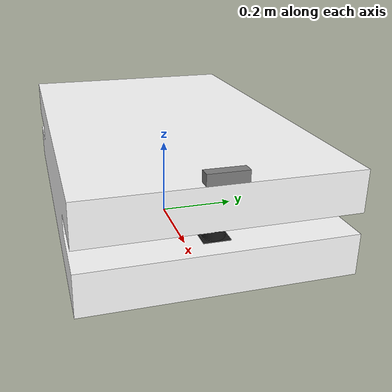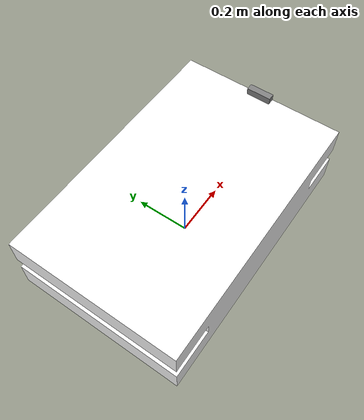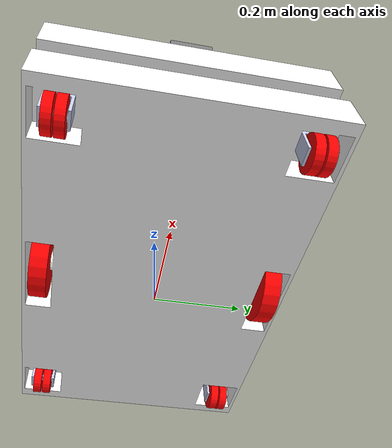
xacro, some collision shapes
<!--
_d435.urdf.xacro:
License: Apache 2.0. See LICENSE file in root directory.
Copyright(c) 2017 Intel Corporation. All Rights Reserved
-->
<?xml version="1.0"?>
<robot xmlns:xacro="http://ros.org/wiki/xacro" name="amr" >

    <!-- amr base -->
    <xacro:include filename="$(find amr_description)/urdf/amr.urdf.xacro" />
    <xacro:include filename="$(find amr_description)/urdf/common.gazebo.xacro" />

    <xacro:arg name="tf_prefix" default="" />
    <xacro:property name="tf_prefix_" value="$(arg tf_prefix)" />
    <xacro:if value="${tf_prefix_ == ''}">
        <xacro:property name="prefix" value="" />
    </xacro:if>
    <xacro:unless value="${tf_prefix_ == ''}">
        <xacro:property name="prefix" value="${tf_prefix_}/" />
    </xacro:unless>

    <xacro:amr prefix="${prefix}" />
    <xacro:controller_plugin_gazebo robot_namespace=""/>

</robot>

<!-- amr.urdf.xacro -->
<robot xmlns:xacro="http://ros.org/wiki/xacro">
    <xacro:include filename="$(find amr_description)/urdf/common_properties.urdf.xacro" />
    <xacro:include filename="$(find amr_description)/urdf/imu.gazebo.urdf.xacro" />
    <xacro:include filename="$(find amr_description)/urdf/amr.gazebo.xacro" />
    <xacro:include filename="$(find amr_description)/urdf/amr.transmission.xacro" />
    <xacro:include filename="$(find amr_description)/urdf/lidar.urdf.xacro" />
    <xacro:include filename="$(find amr_description)/urdf/_d435.urdf.xacro" />

    <xacro:property name="deg_to_rad" value="0.017453293" />

    <xacro:property name="base_inertial_x" value="0.0" />
    <xacro:property name="base_inertial_y" value="0.0" />
    <xacro:property name="base_inertial_z" value="0.0" />
    <xacro:property name="base_inertial_x_length" value="0.9536" />
    <xacro:property name="base_inertial_y_length" value="0.610" />
    <xacro:property name="base_inertial_z_length" value="0.246" />

    <xacro:property name="base_mass" value="77.0" />
    <xacro:property name="act_wheel_radius" value="0.09" />
    <xacro:property name="act_wheel_width" value="0.04" />
    <xacro:property name="act_wheel_mass" value="1.0" />
    <xacro:property name="act_wheel_dx" value="0.0" />
    <xacro:property name="act_wheel_dy" value="0.267" />

    <xacro:property name="caster_base_x_length" value="0.06" />
    <xacro:property name="caster_base_y_length" value="0.04" />
    <xacro:property name="caster_base_z_length" value="0.1" />
    <xacro:property name="caster_base_dx" value="0.4" />
    <xacro:property name="caster_base_dy" value="0.247" />
    <xacro:property name="caster_base_dz" value="0.0875" />

    <xacro:property name="caster_wheel_radius" value="0.04" />
    <xacro:property name="caster_wheel_width" value="0.02" />
    <xacro:property name="caster_wheel_mass" value="0.5" />
    <xacro:property name="caster_wheel_dx" value="0.0" />
    <xacro:property name="caster_wheel_dy" value="0.012" />
    <xacro:property name="caster_wheel_dz" value="-0.05" />

    <!-- from visually matching up the meshes of the amr and the laser scanner -->
    <xacro:property name="laser_dx" value="0.4" />
    <xacro:property name="laser_dy" value="0.0" />
    <xacro:property name="laser_dz" value="0.086" />

    <xacro:macro name="actuated_wheel" params="prefix locationprefix locationright">
        <joint name="${prefix}${locationprefix}_wheel_joint" type="continuous">
        <origin xyz="0.0 ${-act_wheel_dy * locationright} ${act_wheel_radius}" rpy="0 0 0" />
        <parent link="${prefix}base_link" />
        <child link="${prefix}${locationprefix}_wheel_link" />
        <axis xyz="0 1 0" />
        <limit effort="100" velocity="20.0" />
        </joint>

        <link name="${prefix}${locationprefix}_wheel_link">
        <xacro:cylinder_inertial mass="${act_wheel_mass}" radius="${act_wheel_radius}" length="${act_wheel_width}">
            <origin xyz="0 0 0" rpy="${0.5 * pi} 0 0" />
        </xacro:cylinder_inertial>
        <visual>
            <origin xyz="0 0 0" rpy="${0.5 * pi} 0 0" />
            <geometry>
                <cylinder radius="${act_wheel_radius}" length="${act_wheel_width}" />
            </geometry>
            <xacro:insert_block name="material_red" />
        </visual>
        <collision>
            <origin xyz="0 0 0" rpy="${0.5 * pi} 0 0" />
            <geometry>
                <cylinder radius="${act_wheel_radius}" length="${act_wheel_width}" />
            </geometry>
        </collision>
        </link>
        <gazebo reference="${prefix}${locationprefix}_wheel_link">
            <material>Gazebo/FlatBlack</material>
        </gazebo>
    </xacro:macro>

    <xacro:macro name="caster_wheel" params="prefix locationprefix locationright locationleft">
        <!-- caster hub -->
        <joint name="${prefix}${locationprefix}_caster_rotation_joint" type="continuous">
            <origin xyz="${caster_base_dx * locationleft} ${caster_base_dy * locationright} ${caster_base_dz}" rpy="0 0 0" />
            <parent link="${prefix}base_link" />
            <child link="${prefix}${locationprefix}_caster_rotation_link" />
            <axis xyz="0 0 1" />
        <dynamics damping="0.01" friction="0.0"/>
        </joint>

        <link name="${prefix}${locationprefix}_caster_rotation_link">
        <inertial>
            <origin xyz="0 0 0.0" rpy="0.0 0.0 0.0 " />
            <mass value="0.2" />
            <inertia
            ixx="0.00007"
            ixy="0.0"
            ixz="0.0"
            iyy="0.000039"
            iyz="0.0"
            izz="0.0000924" />
        </inertial>
        <visual>
            <origin xyz="0 0 0" rpy="${0.5*pi} 0 ${0.5*pi}" />
            <geometry>
                <mesh filename="package://amr_description/meshes/caster_base.STL" />
            </geometry>
            <xacro:insert_block name="material_silver" />
        </visual>
        <collision>
            <origin xyz="0 0 0" rpy="${0.5*pi} 0 ${0.5*pi}" />
            <geometry>
                <mesh filename="package://amr_description/meshes/caster_base.STL" />
            </geometry>
        </collision>
        </link>
        <gazebo reference="${prefix}${locationprefix}_caster_rotation_link">
            <material>Gazebo/Grey</material>
        </gazebo>

        <!-- caster wheel -->
        <joint name="${prefix}${locationprefix}_caster_wheel_1_joint" type="continuous">
            <origin xyz="${caster_wheel_dx} ${caster_wheel_dy} ${caster_wheel_dz}" rpy="0 0 0" />
            <parent link="${prefix}${locationprefix}_caster_rotation_link" />
            <child link="${prefix}${locationprefix}_caster_1_wheel_link" />
            <axis xyz="0 1 0" />
        </joint>

        <link name="${prefix}${locationprefix}_caster_1_wheel_link">
        <xacro:cylinder_inertial mass="${caster_wheel_mass}" radius="${caster_wheel_radius}" length="${caster_wheel_width}">
            <origin xyz="0 0 0" rpy="${0.5 * pi} 0 0" />
        </xacro:cylinder_inertial>
        <visual>
            <origin xyz="0 0 0" rpy="${0.5 * pi} 0 0" />
            <geometry>
            <cylinder radius="${caster_wheel_radius}" length="${caster_wheel_width}" />
            </geometry>
            <xacro:insert_block name="material_red" />
        </visual>
        <collision>
            <origin xyz="0 0 0" rpy="${0.5 * pi} 0 0" />
            <geometry>
                <cylinder radius="${caster_wheel_radius}" length="${caster_wheel_width}" />
            </geometry>
        </collision>
        </link>
        <gazebo reference="${prefix}${locationprefix}_caster_1_wheel_link">
            <material>Gazebo/FlatBlack</material>
        </gazebo>

        <!-- caster wheel 2 -->
        <joint name="${prefix}${locationprefix}_caster_wheel_2_joint" type="continuous">
            <origin xyz="${caster_wheel_dx} ${-caster_wheel_dy} ${caster_wheel_dz}" rpy="0 0 0" />
            <parent link="${prefix}${locationprefix}_caster_rotation_link" />
            <child link="${prefix}${locationprefix}_caster_2_wheel_link" />
            <axis xyz="0 1 0" />
        </joint>

        <link name="${prefix}${locationprefix}_caster_2_wheel_link">
        <xacro:cylinder_inertial mass="${caster_wheel_mass}" radius="${caster_wheel_radius}" length="${caster_wheel_width}">
            <origin xyz="0 0 0" rpy="${0.5 * pi} 0 0" />
        </xacro:cylinder_inertial>
        <visual>
            <origin xyz="0 0 0" rpy="${0.5 * pi} 0 0" />
            <geometry>
            <cylinder radius="${caster_wheel_radius}" length="${caster_wheel_width}" />
            </geometry>
            <xacro:insert_block name="material_red" />
        </visual>
        <collision>
            <origin xyz="0 0 0" rpy="${0.5 * pi} 0 0" />
            <geometry>
            <cylinder radius="${caster_wheel_radius}" length="${caster_wheel_width}" />
            </geometry>
        </collision>
        </link>
        <gazebo reference="${prefix}${locationprefix}_caster_2_wheel_link">
            <material>Gazebo/FlatBlack</material>
        </gazebo>
    </xacro:macro>

    <xacro:macro name="amr" params="prefix">
        <link name="${prefix}base_footprint" />

        <joint name="${prefix}base_joint" type="fixed">
            <parent link="${prefix}base_footprint" />
            <child link="${prefix}base_link" />
            <origin xyz="0 0 0" rpy="0 0 0.0" />
        </joint>

        <link name="${prefix}base_link">
            <xacro:box_inertial mass="${base_mass}" x="${base_inertial_x_length}" y="${base_inertial_y_length}" z="${base_inertial_z_length}">
                <origin xyz="${base_inertial_x + act_wheel_dx} ${base_inertial_y} ${base_inertial_z}" rpy="0 0 ${0.5*pi}" />
            </xacro:box_inertial>
            <visual>
                <origin xyz="${act_wheel_dx} 0 0" rpy="0 0 ${0.5*pi}" />
                <geometry>
                    <mesh filename="package://amr_description/meshes/base.STL" />
                </geometry>
                <xacro:insert_block name="material_white" />
            </visual>
            <collision>
                <origin xyz="${act_wheel_dx} 0 0" rpy="0 0 ${0.5*pi}" />
                <geometry>
                <mesh filename="package://amr_description/meshes/base.STL" />
                </geometry>
            </collision>
        </link>
        <gazebo reference="${prefix}base_link">
            <material>Gazebo/White</material>
        </gazebo>

        <!-- IMU -->
        <joint name="${prefix}base_link_to_imu_joint" type="fixed">
            <parent link="${prefix}base_link" />
            <child link="${prefix}imu_link" />
            <origin xyz="0.0 0.0 ${base_inertial_z_length/2}" rpy="0 0 0" />  <!-- same as real MiR -->
        </joint>

        <link name="${prefix}imu_link" />

        <xacro:imu_gazebo link="${prefix}imu_link" imu_topic="imu_data" update_rate="50.0" />

        <joint name="${prefix}imu_link_to_imu_frame_joint" type="fixed">
            <parent link="${prefix}imu_link" />
            <child link="${prefix}imu_frame" />
            <origin xyz="0 0 0" rpy="0 0 0" />
        </joint>

        <link name="${prefix}imu_frame" />

        <!-- Laser scanners -->
        <joint name="${prefix}base_link_to_front_laser_joint" type="fixed">
            <parent link="${prefix}base_link" />
            <child link="${prefix}front_laser_link" />
            <origin xyz="${laser_dx + act_wheel_dx} ${laser_dy} ${laser_dz}" rpy="0.0 0.0 0.0" />
        </joint>
        <xacro:lidar prefix="${prefix}" link="front_laser_link" topic="front_scan" />

        <joint name="${prefix}base_link_to_back_laser_joint" type="fixed">
            <parent link="${prefix}base_link" />
            <child link="${prefix}back_laser_link" />
            <origin xyz="${-laser_dx + act_wheel_dx} ${-laser_dy} ${laser_dz}" rpy="0.0 0.0 ${pi}" />
        </joint>

        <xacro:lidar prefix="${prefix}" link="back_laser_link" topic="back_scan" />

        <!-- Camera -->
        <xacro:sensor_d435 name="${prefix}camera" topics_ns="${prefix}camera" parent="${prefix}base_link" publish_pointcloud="true">
            <origin xyz="0.463 0 0.276" rpy="0 0 0.0" />
        </xacro:sensor_d435>

        <!-- wheels -->
        <xacro:actuated_wheel prefix="${prefix}" locationprefix="right" locationright="1"/>
        <xacro:actuated_wheel prefix="${prefix}" locationprefix="left" locationright="-1"/>
        <xacro:caster_wheel prefix="${prefix}" locationprefix="fl" locationright="1" locationleft="1"/>
        <xacro:caster_wheel prefix="${prefix}" locationprefix="bl" locationright="1" locationleft="-1"/>
        <xacro:caster_wheel prefix="${prefix}" locationprefix="fr" locationright="-1" locationleft="1"/>
        <xacro:caster_wheel prefix="${prefix}" locationprefix="br" locationright="-1" locationleft="-1"/>

        <xacro:amr_wheel_transmissions prefix="${prefix}"/>

        <!-- set the gazebo friction parameters for the wheels -->
        <xacro:set_all_wheel_frictions prefix="${prefix}"/>

        <xacro:p3d_base_controller prefix="${prefix}" />
    </xacro:macro>
</robot>

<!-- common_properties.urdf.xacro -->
<!--
    Various useful properties such as constants and materials
    -->
    <robot name="xacro_properties" xmlns:xacro="http://ros.org/wiki/xacro">
    <!-- #################### RViz materials #################### -->
    <xacro:property name="material_white">
        <material name="white">
        <color rgba="1 1 1 1"/>
        </material>
    </xacro:property>
    <xacro:property name="material_yellow">
        <material name="yellow">
        <color rgba="${255/255} ${226/255} ${0/255} 1"/>
        </material>
    </xacro:property>
    <xacro:property name="material_red">
        <material name="red">
        <color rgba="${255/255} 0.0 0.0 1"/>
        </material>
    </xacro:property>
    <xacro:property name="material_almost_white">
        <material name="almost_white">
        <color rgba="0.9 0.9 0.9 1" />
        </material>
    </xacro:property>
    <xacro:property name="material_grey">
        <material name="grey">
        <color rgba="0.5 0.5 0.5 1"/>
        </material>
    </xacro:property>
    <xacro:property name="material_light_grey">
        <material name="light_grey">
        <color rgba="0.6 0.6 0.6 1"/>
        </material>
    </xacro:property>
    <xacro:property name="material_dark_grey">
        <material name="dark_grey">
        <color rgba="0.3 0.3 0.3 1"/>
        </material>
    </xacro:property>
    <xacro:property name="material_black">
        <material name="black">
        <color rgba="0.1 0.1 0.1 1"/>
        </material>
    </xacro:property>
    <xacro:property name="material_aluminum">
        <material name="aluminum">
        <color rgba="0.8 0.8 0.8 1" />
        </material>
    </xacro:property>
    <xacro:property name="material_silver">
        <material name="silver">
        <color rgba="0.79 0.82 0.93 1" />
        </material>
    </xacro:property>

    <!-- #################### inertials with origin #################### -->
    <!-- see https://secure.wikimedia.org/wikipedia/en/wiki/List_of_moment_of_inertia_tensors -->
    <xacro:macro name="sphere_inertial" params="radius mass *origin">
    <inertial>
        <mass value="${mass}" />
        <xacro:insert_block name="origin" />
        <inertia ixx="${0.4 * mass * radius * radius}" ixy="0.0" ixz="0.0"
            iyy="${0.4 * mass * radius * radius}" iyz="0.0"
            izz="${0.4 * mass * radius * radius}" />
        </inertial>
    </xacro:macro>

    <xacro:macro name="cylinder_inertial" params="radius length mass *origin">
        <inertial>
        <mass value="${mass}" />
        <xacro:insert_block name="origin" />
        <inertia ixx="${0.0833333 * mass * (3 * radius * radius + length * length)}" ixy="0.0" ixz="0.0"
            iyy="${0.0833333 * mass * (3 * radius * radius + length * length)}" iyz="0.0"
            izz="${0.5 * mass * radius * radius}" />
        </inertial>
    </xacro:macro>

    <xacro:macro name="box_inertial" params="x y z mass *origin">
        <inertial>
        <mass value="${mass}" />
        <xacro:insert_block name="origin" />
        <inertia ixx="${0.0833333 * mass * (y*y + z*z)}" ixy="0.0" ixz="0.0"
            iyy="${0.0833333 * mass * (x*x + z*z)}" iyz="0.0"
            izz="${0.0833333 * mass * (x*x + y*y)}" />
        </inertial>
    </xacro:macro>
</robot>

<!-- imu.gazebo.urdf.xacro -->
<robot xmlns:xacro="http://ros.org/wiki/xacro">
    <!-- If tf_prefix is given, use "frame tf_prefix/imu_frame", else "imu_frame" -->
    <xacro:arg name="tf_prefix" default="" />
    <xacro:property name="tf_prefix" value="$(arg tf_prefix)" />
    <xacro:if value="${tf_prefix == ''}">
        <xacro:property name="imu_frame" value="imu_frame" />
    </xacro:if>
    <xacro:unless value="${tf_prefix == ''}">
        <xacro:property name="imu_frame" value="$(arg tf_prefix)/imu_frame" />
    </xacro:unless>

    <xacro:macro name="imu_gazebo" params="link imu_topic update_rate">
        <gazebo>
            <plugin name="imu_plugin" filename="libhector_gazebo_ros_imu.so">
                <updateRate>${update_rate}</updateRate>
                <bodyName>${link}</bodyName>
                <frameId>${imu_frame}</frameId>  <!-- from real MiR -->
                <topicName>${imu_topic}</topicName>
                <accelDrift>0.0 0.0 0.0</accelDrift>
                <accelGaussianNoise>${sqrt(5e-05)} ${sqrt(0.0001)} ${sqrt(0.00013)}</accelGaussianNoise>    <!-- real MiR linear_acceleration_covariance: [5e-05, 0.0, 0.0, 0.0, 0.0001, 0.0, 0.0, 0.0, 0.00013] -->
                <rateDrift>0.0 0.0 0.0</rateDrift>
                <rateGaussianNoise>${sqrt(8e-06)} ${sqrt(8e-06)} ${sqrt(3e-07)}</rateGaussianNoise>         <!-- real MiR angular_velocity_covariance: [8e-06, 0.0, 0.0, 0.0, 8e-06, 0.0, 0.0, 0.0, 3e-07] -->
                <yawDrift>0.0</yawDrift>
                <yawGaussianNoise>${sqrt(0.1)}</yawGaussianNoise>                                           <!-- real MiR orientation_covariance: [0.1, 0.0, 0.0, 0.0, 0.1, 0.0, 0.0, 0.0, 0.1] -->
            </plugin>
        </gazebo>
    </xacro:macro>
</robot>

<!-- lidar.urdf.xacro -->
<robot xmlns:xacro="http://ros.org/wiki/xacro">
    <xacro:include filename="$(find amr_description)/urdf/common_properties.urdf.xacro" />

    <xacro:property name="laser_x" value="0.06" />
    <xacro:property name="laser_y" value="0.06" />
    <xacro:property name="laser_z" value="0.0835" />
    <xacro:property name="laser_mass" value="1.2" />

    <xacro:macro name="lidar" params="link topic prefix">
        <link name="${prefix}${link}">
        <visual>
            <origin xyz="0.0 0.0 0.0" rpy="${0.5*pi} 0 0" />
            <geometry>
            <mesh filename="package://amr_description/meshes/lidar.STL" />
            </geometry>
            <xacro:insert_block name="material_black" />
        </visual>
        <collision>
            <origin xyz="0.0 0.0 0.0" rpy="${0.5*pi} 0 0" />
            <geometry>
            <mesh filename="package://amr_description/meshes/lidar.STL" />
            </geometry>
        </collision>
        <xacro:box_inertial x="${laser_x}" y="${laser_y}" z="${laser_z}" mass="${laser_mass}">
            <origin xyz="0 0 0" />
        </xacro:box_inertial>
        </link>

        <gazebo reference="${prefix}${link}">
        <material value="Gazebo/FlatBlack" />

        <sensor type="ray" name="${prefix}${link}">
            <pose>0.0 0.0 0.0575 0.0 0 0.0</pose>
            <visualize>false</visualize>
            <update_rate>12.5</update_rate>
            <ray>
            <scan>
                <horizontal>
                <samples>720</samples>
                <resolution>1</resolution>  <!-- has to be 1; actual resolution will be computed from number of samples + min_angle/max_angle -->
                <min_angle>${-0.5 * pi}</min_angle>
                <max_angle>${0.5 * pi}</max_angle>
                </horizontal>
            </scan>
            <range>
                <min>0.05</min>
                <max>30.0</max>
                <resolution>0.01</resolution>
            </range>
            <noise>
                <type>gaussian</type>
                <!-- Noise parameters based on published spec for S300 achieving
                    "+-29mm" accuracy at range < 3m (~0.01 of the range) at
                    1 sigma. -->
                <mean>0.012</mean>
                <stddev>0.001</stddev>
            </noise>
            </ray>
            <plugin name="gazebo_ros_${link}_controller" filename="libgazebo_ros_laser.so">
            <frameName>${prefix}${link}</frameName>
            <topicName>${topic}</topicName>
            </plugin>
        </sensor>
        </gazebo>
    </xacro:macro>
</robot>

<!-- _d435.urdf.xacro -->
<robot name="sensor_d435" xmlns:xacro="http://ros.org/wiki/xacro">
  <!--File includes-->
  <xacro:include filename="$(find amr_description)/urdf/_d435.gazebo.xacro"/>

  <xacro:macro name="sensor_d435" params="name:=camera topics_ns:=camera parent *origin publish_pointcloud:=true">
    <xacro:property name="M_PI" value="3.1415926535897931" />

    <!-- The following values are approximate, and the camera node
     publishing TF values with actual calibrated camera extrinsic values -->
    <xacro:property name="d435_cam_depth_to_left_ir_offset" value="0.0"/>
    <xacro:property name="d435_cam_depth_to_right_ir_offset" value="-0.050"/>
    <xacro:property name="d435_cam_depth_to_color_offset" value="0.015"/>

    <!-- The following values model the aluminum peripherial case for the
    D435 camera, with the camera joint represented by the actual
    peripherial camera tripod mount -->
    <xacro:property name="d435_cam_width" value="0.090"/>
    <xacro:property name="d435_cam_height" value="0.025"/>
    <xacro:property name="d435_cam_depth" value="0.02505"/>
    <xacro:property name="d435_cam_mount_from_center_offset" value="0.0149"/>

    <!-- The following offset is relative the the physical D435 camera peripherial
    camera tripod mount -->
    <xacro:property name="d435_cam_depth_px" value="${d435_cam_mount_from_center_offset}"/>
    <xacro:property name="d435_cam_depth_py" value="0.0175"/>
    <xacro:property name="d435_cam_depth_pz" value="${d435_cam_height/2}"/>

    <material name="${name}_aluminum">
    <color rgba="0.5 0.5 0.5 1"/>
    </material>

    <!-- camera body, with origin at bottom screw mount -->
    <joint name="${name}_joint" type="fixed">
      <xacro:insert_block name="origin" />
      <parent link="${parent}"/>
      <child link="${name}_bottom_screw_frame" />
    </joint>
    <link name="${name}_bottom_screw_frame"/>

    <joint name="${name}_link_joint" type="fixed">
      <origin xyz="0 ${d435_cam_depth_py} ${d435_cam_depth_pz}" rpy="0 0 0"/>
      <parent link="${name}_bottom_screw_frame"/>
      <child link="${name}_link" />
    </joint>

    <link name="${name}_link">
      <visual>
      <origin xyz="${d435_cam_mount_from_center_offset} ${-d435_cam_depth_py} 0" rpy="${M_PI/2} 0 ${M_PI/2}"/>
        <geometry>
          <mesh filename="package://amr_description/meshes/d435.dae" />
        </geometry>
        <material name="${name}_aluminum"/>
      </visual>
      <collision>
        <origin xyz="0 ${-d435_cam_depth_py} 0" rpy="0 0 0"/>
        <geometry>
        <box size="${d435_cam_depth} ${d435_cam_width} ${d435_cam_height}"/>
        </geometry>
      </collision>
      <inertial>
        <!-- The following are not reliable values, and should not be used for modeling -->
        <mass value="0.564" />
        <origin xyz="0 0 0" />
        <inertia ixx="0.003881243" ixy="0.0" ixz="0.0" iyy="0.000498940" iyz="0.0" izz="0.003879257" />
      </inertial>
    </link>

    <!-- camera depth joints and links -->
    <joint name="${name}_depth_joint" type="fixed">
      <origin xyz="0 0 0" rpy="0 0 0"/>
      <parent link="${name}_link"/>
      <child link="${name}_depth_frame" />
    </joint>
    <link name="${name}_depth_frame"/>

    <joint name="${name}_depth_optical_joint" type="fixed">
      <origin xyz="0 0 0" rpy="${-M_PI/2} 0 ${-M_PI/2}" />
      <parent link="${name}_depth_frame" />
      <child link="${name}_depth_optical_frame" />
    </joint>
    <link name="${name}_depth_optical_frame"/>

    <!-- camera left IR joints and links -->
    <joint name="${name}_left_ir_joint" type="fixed">
      <origin xyz="0 ${d435_cam_depth_to_left_ir_offset} 0" rpy="0 0 0" />
      <parent link="${name}_depth_frame" />
      <child link="${name}_left_ir_frame" />
    </joint>
    <link name="${name}_left_ir_frame"/>

    <joint name="${name}_left_ir_optical_joint" type="fixed">
      <origin xyz="0 0 0" rpy="${-M_PI/2} 0 ${-M_PI/2}" />
      <parent link="${name}_left_ir_frame" />
      <child link="${name}_left_ir_optical_frame" />
    </joint>
    <link name="${name}_left_ir_optical_frame"/>

    <!-- camera right IR joints and links -->
    <joint name="${name}_right_ir_joint" type="fixed">
      <origin xyz="0 ${d435_cam_depth_to_right_ir_offset} 0" rpy="0 0 0" />
      <parent link="${name}_depth_frame" />
      <child link="${name}_right_ir_frame" />
    </joint>
    <link name="${name}_right_ir_frame"/>

    <joint name="${name}_right_ir_optical_joint" type="fixed">
      <origin xyz="0 0 0" rpy="${-M_PI/2} 0 ${-M_PI/2}" />
      <parent link="${name}_right_ir_frame" />
      <child link="${name}_right_ir_optical_frame" />
    </joint>
    <link name="${name}_right_ir_optical_frame"/>

    <!-- camera color joints and links -->
    <joint name="${name}_color_joint" type="fixed">
      <origin xyz="0 ${d435_cam_depth_to_color_offset} 0" rpy="0 0 0" />
      <parent link="${name}_depth_frame" />
      <child link="${name}_color_frame" />
    </joint>
    <link name="${name}_color_frame"/>

    <joint name="${name}_color_optical_joint" type="fixed">
      <origin xyz="0 0 0" rpy="${-M_PI/2} 0 ${-M_PI/2}" />
      <parent link="${name}_color_frame" />
      <child link="${name}_color_optical_frame" />
    </joint>
    <link name="${name}_color_optical_frame"/>

    <!-- Realsense Gazebo Plugin -->
    <xacro:gazebo_d435 camera_name="${name}" reference_link="${name}_link" topics_ns="${topics_ns}" depth_optical_frame="${name}_depth_optical_frame" color_optical_frame="${name}_color_optical_frame" infrared1_optical_frame="${name}_left_ir_optical_frame" infrared2_optical_frame="${name}_right_ir_optical_frame" publish_pointcloud="${publish_pointcloud}"/>

  </xacro:macro>
</robot>
